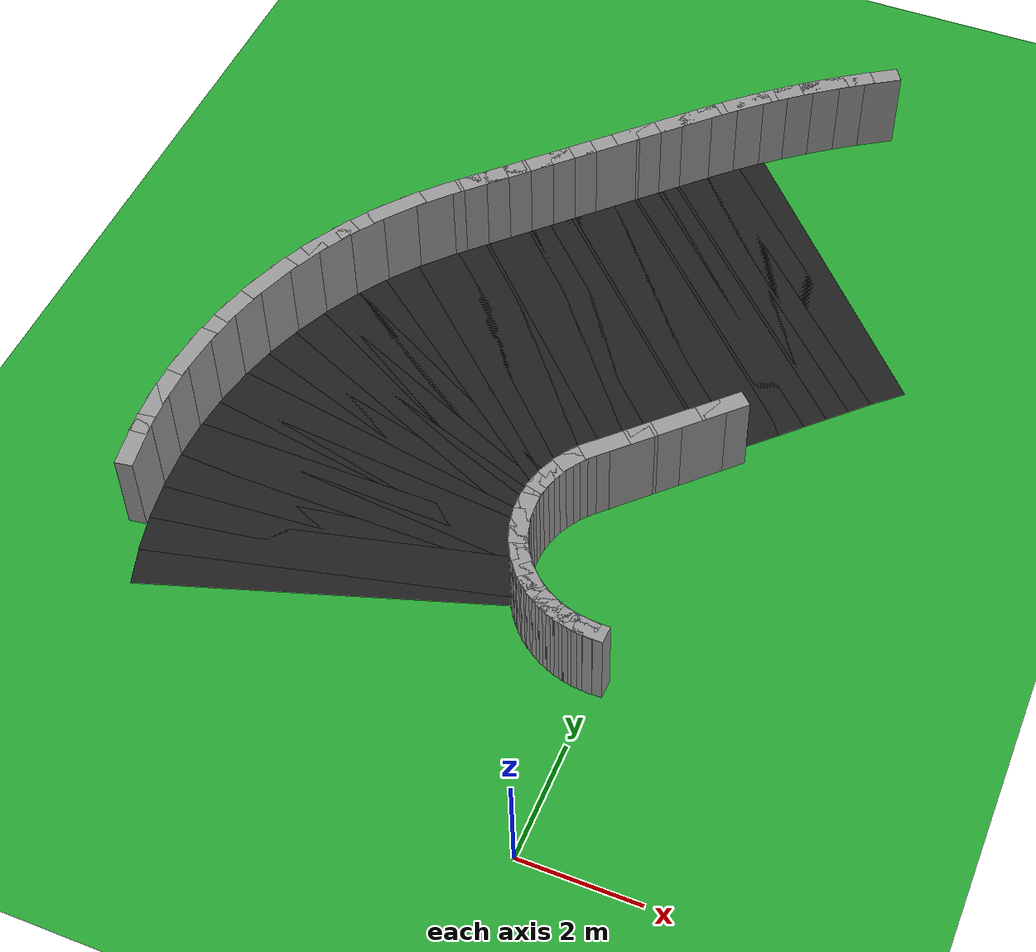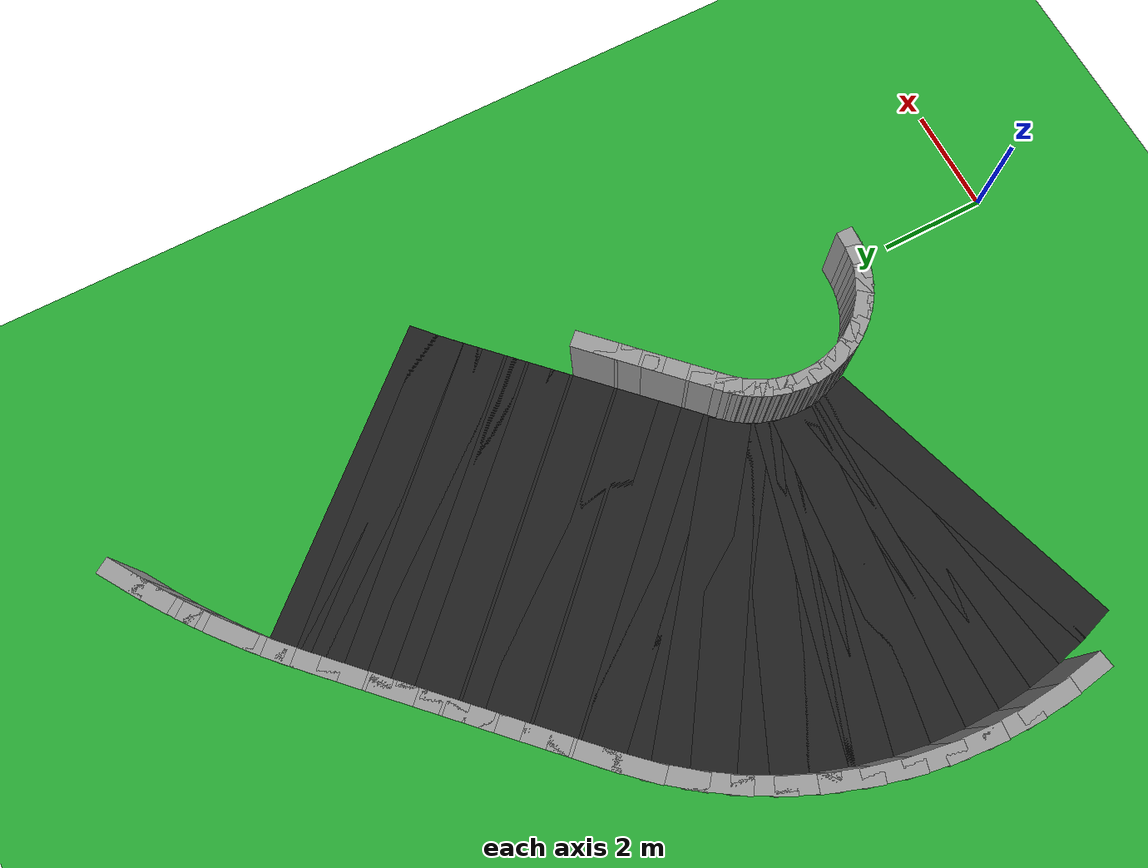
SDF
<sdf version="1.6">
 <world name="loop_road">
  <include><uri>model://sun</uri></include>
  <model name="ground_plane">
   <static>true</static>
   <link name="link">
    <collision name="collision">
     <surface><friction><ode><mu>100</mu><mu2>50</mu2></ode></friction></surface>
     <geometry><plane><normal>0 0 1</normal><size>120 120</size></plane></geometry>
    </collision>
    <visual name="visual">
     <geometry><plane><normal>0 0 1</normal><size>120 120</size></plane></geometry>
     <material>
      <script><uri>file://media/materials/scripts/gazebo.material</uri><name>Gazebo/Green</name></script>
     </material>
    </visual>
   </link>
  </model>
  <model name="curbR_172">
   <static>true</static>
   <pose>0.276 16.319 0.750 0 0 -2.56891</pose>
   <link name="link">
    <collision name="collision"><geometry><box><size>0.856 0.300 1.500</size></box></geometry></collision>
    <visual name="visual">
     <geometry><box><size>0.856 0.300 1.500</size></box></geometry>
     <material>
      <script><uri>file://media/materials/scripts/gazebo.material</uri><name>Gazebo/Grey</name></script>
     </material>
    </visual>
   </link>
  </model>
  <model name="curbR_173">
   <static>true</static>
   <pose>-0.136 16.044 0.750 0 0 -2.53618</pose>
   <link name="link">
    <collision name="collision"><geometry><box><size>0.856 0.300 1.500</size></box></geometry></collision>
    <visual name="visual">
     <geometry><box><size>0.856 0.300 1.500</size></box></geometry>
     <material>
      <script><uri>file://media/materials/scripts/gazebo.material</uri><name>Gazebo/Grey</name></script>
     </material>
    </visual>
   </link>
  </model>
  <model name="curbR_174">
   <static>true</static>
   <pose>-0.539 15.755 0.750 0 0 -2.50346</pose>
   <link name="link">
    <collision name="collision"><geometry><box><size>0.856 0.300 1.500</size></box></geometry></collision>
    <visual name="visual">
     <geometry><box><size>0.856 0.300 1.500</size></box></geometry>
     <material>
      <script><uri>file://media/materials/scripts/gazebo.material</uri><name>Gazebo/Grey</name></script>
     </material>
    </visual>
   </link>
  </model>
  <model name="curbR_175">
   <static>true</static>
   <pose>-0.933 15.453 0.750 0 0 -2.47073</pose>
   <link name="link">
    <collision name="collision"><geometry><box><size>0.856 0.300 1.500</size></box></geometry></collision>
    <visual name="visual">
     <geometry><box><size>0.856 0.300 1.500</size></box></geometry>
     <material>
      <script><uri>file://media/materials/scripts/gazebo.material</uri><name>Gazebo/Grey</name></script>
     </material>
    </visual>
   </link>
  </model>
  <model name="curbR_176">
   <static>true</static>
   <pose>-1.316 15.139 0.750 0 0 -2.43801</pose>
   <link name="link">
    <collision name="collision"><geometry><box><size>0.856 0.300 1.500</size></box></geometry></collision>
    <visual name="visual">
     <geometry><box><size>0.856 0.300 1.500</size></box></geometry>
     <material>
      <script><uri>file://media/materials/scripts/gazebo.material</uri><name>Gazebo/Grey</name></script>
     </material>
    </visual>
   </link>
  </model>
  <model name="asphalt_177">
   <static>true</static>
   <pose>0.427 12.478 0.005 0 0 -2.40528</pose>
   <link name="link">
    <visual name="visual">
     <geometry><box><size>0.753 6.000 0.010</size></box></geometry>
     <material>
      <script><uri>file://media/materials/scripts/gazebo.material</uri><name>Gazebo/Black</name></script>
     </material>
    </visual>
   </link>
  </model>
  <model name="curbR_177">
   <static>true</static>
   <pose>-1.688 14.812 0.750 0 0 -2.40528</pose>
   <link name="link">
    <collision name="collision"><geometry><box><size>0.856 0.300 1.500</size></box></geometry></collision>
    <visual name="visual">
     <geometry><box><size>0.856 0.300 1.500</size></box></geometry>
     <material>
      <script><uri>file://media/materials/scripts/gazebo.material</uri><name>Gazebo/Grey</name></script>
     </material>
    </visual>
   </link>
  </model>
  <model name="asphalt_178">
   <static>true</static>
   <pose>0.140 12.210 0.005 0 0 -2.37256</pose>
   <link name="link">
    <visual name="visual">
     <geometry><box><size>0.753 6.000 0.010</size></box></geometry>
     <material>
      <script><uri>file://media/materials/scripts/gazebo.material</uri><name>Gazebo/Black</name></script>
     </material>
    </visual>
   </link>
  </model>
  <model name="curbR_178">
   <static>true</static>
   <pose>-2.050 14.473 0.750 0 0 -2.37256</pose>
   <link name="link">
    <collision name="collision"><geometry><box><size>0.856 0.300 1.500</size></box></geometry></collision>
    <visual name="visual">
     <geometry><box><size>0.856 0.300 1.500</size></box></geometry>
     <material>
      <script><uri>file://media/materials/scripts/gazebo.material</uri><name>Gazebo/Grey</name></script>
     </material>
    </visual>
   </link>
  </model>
  <model name="asphalt_179">
   <static>true</static>
   <pose>-0.148 11.926 0.005 0 0 -2.35619</pose>
   <link name="link">
    <visual name="visual">
     <geometry><box><size>0.777 6.000 0.010</size></box></geometry>
     <material>
      <script><uri>file://media/materials/scripts/gazebo.material</uri><name>Gazebo/Black</name></script>
     </material>
    </visual>
   </link>
  </model>
  <model name="curbR_179">
   <static>true</static>
   <pose>-2.376 14.153 0.750 0 0 -2.35619</pose>
   <link name="link">
    <collision name="collision"><geometry><box><size>0.777 0.300 1.500</size></box></geometry></collision>
    <visual name="visual">
     <geometry><box><size>0.777 0.300 1.500</size></box></geometry>
     <material>
      <script><uri>file://media/materials/scripts/gazebo.material</uri><name>Gazebo/Grey</name></script>
     </material>
    </visual>
   </link>
  </model>
  <model name="asphalt_180">
   <static>true</static>
   <pose>-0.443 11.631 0.005 0 0 -2.35619</pose>
   <link name="link">
    <visual name="visual">
     <geometry><box><size>0.777 6.000 0.010</size></box></geometry>
     <material>
      <script><uri>file://media/materials/scripts/gazebo.material</uri><name>Gazebo/Black</name></script>
     </material>
    </visual>
   </link>
  </model>
  <model name="curbR_180">
   <static>true</static>
   <pose>-2.670 13.859 0.750 0 0 -2.35619</pose>
   <link name="link">
    <collision name="collision"><geometry><box><size>0.777 0.300 1.500</size></box></geometry></collision>
    <visual name="visual">
     <geometry><box><size>0.777 0.300 1.500</size></box></geometry>
     <material>
      <script><uri>file://media/materials/scripts/gazebo.material</uri><name>Gazebo/Grey</name></script>
     </material>
    </visual>
   </link>
  </model>
  <model name="asphalt_181">
   <static>true</static>
   <pose>-0.738 11.337 0.005 0 0 -2.35619</pose>
   <link name="link">
    <visual name="visual">
     <geometry><box><size>0.777 6.000 0.010</size></box></geometry>
     <material>
      <script><uri>file://media/materials/scripts/gazebo.material</uri><name>Gazebo/Black</name></script>
     </material>
    </visual>
   </link>
  </model>
  <model name="curbR_181">
   <static>true</static>
   <pose>-2.965 13.564 0.750 0 0 -2.35619</pose>
   <link name="link">
    <collision name="collision"><geometry><box><size>0.777 0.300 1.500</size></box></geometry></collision>
    <visual name="visual">
     <geometry><box><size>0.777 0.300 1.500</size></box></geometry>
     <material>
      <script><uri>file://media/materials/scripts/gazebo.material</uri><name>Gazebo/Grey</name></script>
     </material>
    </visual>
   </link>
  </model>
  <model name="asphalt_182">
   <static>true</static>
   <pose>-1.032 11.042 0.005 0 0 -2.35619</pose>
   <link name="link">
    <visual name="visual">
     <geometry><box><size>0.777 6.000 0.010</size></box></geometry>
     <material>
      <script><uri>file://media/materials/scripts/gazebo.material</uri><name>Gazebo/Black</name></script>
     </material>
    </visual>
   </link>
  </model>
  <model name="curbR_182">
   <static>true</static>
   <pose>-3.260 13.270 0.750 0 0 -2.35619</pose>
   <link name="link">
    <collision name="collision"><geometry><box><size>0.777 0.300 1.500</size></box></geometry></collision>
    <visual name="visual">
     <geometry><box><size>0.777 0.300 1.500</size></box></geometry>
     <material>
      <script><uri>file://media/materials/scripts/gazebo.material</uri><name>Gazebo/Grey</name></script>
     </material>
    </visual>
   </link>
  </model>
  <model name="asphalt_183">
   <static>true</static>
   <pose>-1.327 10.748 0.005 0 0 -2.35619</pose>
   <link name="link">
    <visual name="visual">
     <geometry><box><size>0.777 6.000 0.010</size></box></geometry>
     <material>
      <script><uri>file://media/materials/scripts/gazebo.material</uri><name>Gazebo/Black</name></script>
     </material>
    </visual>
   </link>
  </model>
  <model name="curbR_183">
   <static>true</static>
   <pose>-3.554 12.975 0.750 0 0 -2.35619</pose>
   <link name="link">
    <collision name="collision"><geometry><box><size>0.777 0.300 1.500</size></box></geometry></collision>
    <visual name="visual">
     <geometry><box><size>0.777 0.300 1.500</size></box></geometry>
     <material>
      <script><uri>file://media/materials/scripts/gazebo.material</uri><name>Gazebo/Grey</name></script>
     </material>
    </visual>
   </link>
  </model>
  <model name="asphalt_184">
   <static>true</static>
   <pose>-1.621 10.453 0.005 0 0 -2.35619</pose>
   <link name="link">
    <visual name="visual">
     <geometry><box><size>0.777 6.000 0.010</size></box></geometry>
     <material>
      <script><uri>file://media/materials/scripts/gazebo.material</uri><name>Gazebo/Black</name></script>
     </material>
    </visual>
   </link>
  </model>
  <model name="curbR_184">
   <static>true</static>
   <pose>-3.849 12.680 0.750 0 0 -2.35619</pose>
   <link name="link">
    <collision name="collision"><geometry><box><size>0.777 0.300 1.500</size></box></geometry></collision>
    <visual name="visual">
     <geometry><box><size>0.777 0.300 1.500</size></box></geometry>
     <material>
      <script><uri>file://media/materials/scripts/gazebo.material</uri><name>Gazebo/Grey</name></script>
     </material>
    </visual>
   </link>
  </model>
  <model name="asphalt_185">
   <static>true</static>
   <pose>-1.916 10.158 0.005 0 0 -2.35619</pose>
   <link name="link">
    <visual name="visual">
     <geometry><box><size>0.777 6.000 0.010</size></box></geometry>
     <material>
      <script><uri>file://media/materials/scripts/gazebo.material</uri><name>Gazebo/Black</name></script>
     </material>
    </visual>
   </link>
  </model>
  <model name="curbL_185">
   <static>true</static>
   <pose>0.311 7.931 0.750 0 0 -2.35619</pose>
   <link name="link">
    <collision name="collision"><geometry><box><size>0.777 0.300 1.500</size></box></geometry></collision>
    <visual name="visual">
     <geometry><box><size>0.777 0.300 1.500</size></box></geometry>
     <material>
      <script><uri>file://media/materials/scripts/gazebo.material</uri><name>Gazebo/Grey</name></script>
     </material>
    </visual>
   </link>
  </model>
  <model name="curbR_185">
   <static>true</static>
   <pose>-4.143 12.386 0.750 0 0 -2.35619</pose>
   <link name="link">
    <collision name="collision"><geometry><box><size>0.777 0.300 1.500</size></box></geometry></collision>
    <visual name="visual">
     <geometry><box><size>0.777 0.300 1.500</size></box></geometry>
     <material>
      <script><uri>file://media/materials/scripts/gazebo.material</uri><name>Gazebo/Grey</name></script>
     </material>
    </visual>
   </link>
  </model>
  <model name="asphalt_186">
   <static>true</static>
   <pose>-2.211 9.864 0.005 0 0 -2.35619</pose>
   <link name="link">
    <visual name="visual">
     <geometry><box><size>0.777 6.000 0.010</size></box></geometry>
     <material>
      <script><uri>file://media/materials/scripts/gazebo.material</uri><name>Gazebo/Black</name></script>
     </material>
    </visual>
   </link>
  </model>
  <model name="curbL_186">
   <static>true</static>
   <pose>0.017 7.636 0.750 0 0 -2.35619</pose>
   <link name="link">
    <collision name="collision"><geometry><box><size>0.777 0.300 1.500</size></box></geometry></collision>
    <visual name="visual">
     <geometry><box><size>0.777 0.300 1.500</size></box></geometry>
     <material>
      <script><uri>file://media/materials/scripts/gazebo.material</uri><name>Gazebo/Grey</name></script>
     </material>
    </visual>
   </link>
  </model>
  <model name="curbR_186">
   <static>true</static>
   <pose>-4.438 12.091 0.750 0 0 -2.35619</pose>
   <link name="link">
    <collision name="collision"><geometry><box><size>0.777 0.300 1.500</size></box></geometry></collision>
    <visual name="visual">
     <geometry><box><size>0.777 0.300 1.500</size></box></geometry>
     <material>
      <script><uri>file://media/materials/scripts/gazebo.material</uri><name>Gazebo/Grey</name></script>
     </material>
    </visual>
   </link>
  </model>
  <model name="asphalt_187">
   <static>true</static>
   <pose>-2.505 9.569 0.005 0 0 -2.35619</pose>
   <link name="link">
    <visual name="visual">
     <geometry><box><size>0.777 6.000 0.010</size></box></geometry>
     <material>
      <script><uri>file://media/materials/scripts/gazebo.material</uri><name>Gazebo/Black</name></script>
     </material>
    </visual>
   </link>
  </model>
  <model name="curbL_187">
   <static>true</static>
   <pose>-0.278 7.342 0.750 0 0 -2.35619</pose>
   <link name="link">
    <collision name="collision"><geometry><box><size>0.777 0.300 1.500</size></box></geometry></collision>
    <visual name="visual">
     <geometry><box><size>0.777 0.300 1.500</size></box></geometry>
     <material>
      <script><uri>file://media/materials/scripts/gazebo.material</uri><name>Gazebo/Grey</name></script>
     </material>
    </visual>
   </link>
  </model>
  <model name="curbR_187">
   <static>true</static>
   <pose>-4.733 11.796 0.750 0 0 -2.35619</pose>
   <link name="link">
    <collision name="collision"><geometry><box><size>0.777 0.300 1.500</size></box></geometry></collision>
    <visual name="visual">
     <geometry><box><size>0.777 0.300 1.500</size></box></geometry>
     <material>
      <script><uri>file://media/materials/scripts/gazebo.material</uri><name>Gazebo/Grey</name></script>
     </material>
    </visual>
   </link>
  </model>
  <model name="asphalt_188">
   <static>true</static>
   <pose>-2.800 9.274 0.005 0 0 -2.35619</pose>
   <link name="link">
    <visual name="visual">
     <geometry><box><size>0.777 6.000 0.010</size></box></geometry>
     <material>
      <script><uri>file://media/materials/scripts/gazebo.material</uri><name>Gazebo/Black</name></script>
     </material>
    </visual>
   </link>
  </model>
  <model name="curbL_188">
   <static>true</static>
   <pose>-0.573 7.047 0.750 0 0 -2.35619</pose>
   <link name="link">
    <collision name="collision"><geometry><box><size>0.777 0.300 1.500</size></box></geometry></collision>
    <visual name="visual">
     <geometry><box><size>0.777 0.300 1.500</size></box></geometry>
     <material>
      <script><uri>file://media/materials/scripts/gazebo.material</uri><name>Gazebo/Grey</name></script>
     </material>
    </visual>
   </link>
  </model>
  <model name="curbR_188">
   <static>true</static>
   <pose>-5.027 11.502 0.750 0 0 -2.35619</pose>
   <link name="link">
    <collision name="collision"><geometry><box><size>0.777 0.300 1.500</size></box></geometry></collision>
    <visual name="visual">
     <geometry><box><size>0.777 0.300 1.500</size></box></geometry>
     <material>
      <script><uri>file://media/materials/scripts/gazebo.material</uri><name>Gazebo/Grey</name></script>
     </material>
    </visual>
   </link>
  </model>
  <model name="asphalt_189">
   <static>true</static>
   <pose>-3.095 8.980 0.005 0 0 -2.35619</pose>
   <link name="link">
    <visual name="visual">
     <geometry><box><size>0.777 6.000 0.010</size></box></geometry>
     <material>
      <script><uri>file://media/materials/scripts/gazebo.material</uri><name>Gazebo/Black</name></script>
     </material>
    </visual>
   </link>
  </model>
  <model name="curbL_189">
   <static>true</static>
   <pose>-0.867 6.752 0.750 0 0 -2.35619</pose>
   <link name="link">
    <collision name="collision"><geometry><box><size>0.777 0.300 1.500</size></box></geometry></collision>
    <visual name="visual">
     <geometry><box><size>0.777 0.300 1.500</size></box></geometry>
     <material>
      <script><uri>file://media/materials/scripts/gazebo.material</uri><name>Gazebo/Grey</name></script>
     </material>
    </visual>
   </link>
  </model>
  <model name="curbR_189">
   <static>true</static>
   <pose>-5.322 11.207 0.750 0 0 -2.35619</pose>
   <link name="link">
    <collision name="collision"><geometry><box><size>0.777 0.300 1.500</size></box></geometry></collision>
    <visual name="visual">
     <geometry><box><size>0.777 0.300 1.500</size></box></geometry>
     <material>
      <script><uri>file://media/materials/scripts/gazebo.material</uri><name>Gazebo/Grey</name></script>
     </material>
    </visual>
   </link>
  </model>
  <model name="asphalt_190">
   <static>true</static>
   <pose>-3.389 8.685 0.005 0 0 -2.35619</pose>
   <link name="link">
    <visual name="visual">
     <geometry><box><size>0.777 6.000 0.010</size></box></geometry>
     <material>
      <script><uri>file://media/materials/scripts/gazebo.material</uri><name>Gazebo/Black</name></script>
     </material>
    </visual>
   </link>
  </model>
  <model name="curbL_190">
   <static>true</static>
   <pose>-1.162 6.458 0.750 0 0 -2.35619</pose>
   <link name="link">
    <collision name="collision"><geometry><box><size>0.777 0.300 1.500</size></box></geometry></collision>
    <visual name="visual">
     <geometry><box><size>0.777 0.300 1.500</size></box></geometry>
     <material>
      <script><uri>file://media/materials/scripts/gazebo.material</uri><name>Gazebo/Grey</name></script>
     </material>
    </visual>
   </link>
  </model>
  <model name="curbR_190">
   <static>true</static>
   <pose>-5.617 10.913 0.750 0 0 -2.35619</pose>
   <link name="link">
    <collision name="collision"><geometry><box><size>0.777 0.300 1.500</size></box></geometry></collision>
    <visual name="visual">
     <geometry><box><size>0.777 0.300 1.500</size></box></geometry>
     <material>
      <script><uri>file://media/materials/scripts/gazebo.material</uri><name>Gazebo/Grey</name></script>
     </material>
    </visual>
   </link>
  </model>
  <model name="asphalt_191">
   <static>true</static>
   <pose>-3.674 8.389 0.005 0 0 -2.31557</pose>
   <link name="link">
    <visual name="visual">
     <geometry><box><size>0.766 6.000 0.010</size></box></geometry>
     <material>
      <script><uri>file://media/materials/scripts/gazebo.material</uri><name>Gazebo/Black</name></script>
     </material>
    </visual>
   </link>
  </model>
  <model name="curbL_191">
   <static>true</static>
   <pose>-1.360 6.255 0.750 0 0 -2.31557</pose>
   <link name="link">
    <collision name="collision"><geometry><box><size>0.510 0.300 1.500</size></box></geometry></collision>
    <visual name="visual">
     <geometry><box><size>0.510 0.300 1.500</size></box></geometry>
     <material>
      <script><uri>file://media/materials/scripts/gazebo.material</uri><name>Gazebo/Grey</name></script>
     </material>
    </visual>
   </link>
  </model>
  <model name="curbR_191">
   <static>true</static>
   <pose>-5.988 10.522 0.750 0 0 -2.31557</pose>
   <link name="link">
    <collision name="collision"><geometry><box><size>1.022 0.300 1.500</size></box></geometry></collision>
    <visual name="visual">
     <geometry><box><size>1.022 0.300 1.500</size></box></geometry>
     <material>
      <script><uri>file://media/materials/scripts/gazebo.material</uri><name>Gazebo/Grey</name></script>
     </material>
    </visual>
   </link>
  </model>
  <model name="asphalt_192">
   <static>true</static>
   <pose>-3.937 8.079 0.005 0 0 -2.23432</pose>
   <link name="link">
    <visual name="visual">
     <geometry><box><size>0.766 6.000 0.010</size></box></geometry>
     <material>
      <script><uri>file://media/materials/scripts/gazebo.material</uri><name>Gazebo/Black</name></script>
     </material>
    </visual>
   </link>
  </model>
  <model name="curbL_192">
   <static>true</static>
   <pose>-1.457 6.141 0.750 0 0 -2.23432</pose>
   <link name="link">
    <collision name="collision"><geometry><box><size>0.510 0.300 1.500</size></box></geometry></collision>
    <visual name="visual">
     <geometry><box><size>0.510 0.300 1.500</size></box></geometry>
     <material>
      <script><uri>file://media/materials/scripts/gazebo.material</uri><name>Gazebo/Grey</name></script>
     </material>
    </visual>
   </link>
  </model>
  <model name="curbR_192">
   <static>true</static>
   <pose>-6.417 10.018 0.750 0 0 -2.23432</pose>
   <link name="link">
    <collision name="collision"><geometry><box><size>1.022 0.300 1.500</size></box></geometry></collision>
    <visual name="visual">
     <geometry><box><size>1.022 0.300 1.500</size></box></geometry>
     <material>
      <script><uri>file://media/materials/scripts/gazebo.material</uri><name>Gazebo/Grey</name></script>
     </material>
    </visual>
   </link>
  </model>
  <model name="asphalt_193">
   <static>true</static>
   <pose>-4.174 7.750 0.005 0 0 -2.15307</pose>
   <link name="link">
    <visual name="visual">
     <geometry><box><size>0.766 6.000 0.010</size></box></geometry>
     <material>
      <script><uri>file://media/materials/scripts/gazebo.material</uri><name>Gazebo/Black</name></script>
     </material>
    </visual>
   </link>
  </model>
  <model name="curbL_193">
   <static>true</static>
   <pose>-1.545 6.019 0.750 0 0 -2.15307</pose>
   <link name="link">
    <collision name="collision"><geometry><box><size>0.510 0.300 1.500</size></box></geometry></collision>
    <visual name="visual">
     <geometry><box><size>0.510 0.300 1.500</size></box></geometry>
     <material>
      <script><uri>file://media/materials/scripts/gazebo.material</uri><name>Gazebo/Grey</name></script>
     </material>
    </visual>
   </link>
  </model>
  <model name="curbR_193">
   <static>true</static>
   <pose>-6.803 9.480 0.750 0 0 -2.15307</pose>
   <link name="link">
    <collision name="collision"><geometry><box><size>1.022 0.300 1.500</size></box></geometry></collision>
    <visual name="visual">
     <geometry><box><size>1.022 0.300 1.500</size></box></geometry>
     <material>
      <script><uri>file://media/materials/scripts/gazebo.material</uri><name>Gazebo/Grey</name></script>
     </material>
    </visual>
   </link>
  </model>
  <model name="asphalt_194">
   <static>true</static>
   <pose>-4.383 7.402 0.005 0 0 -2.07183</pose>
   <link name="link">
    <visual name="visual">
     <geometry><box><size>0.766 6.000 0.010</size></box></geometry>
     <material>
      <script><uri>file://media/materials/scripts/gazebo.material</uri><name>Gazebo/Black</name></script>
     </material>
    </visual>
   </link>
  </model>
  <model name="curbL_194">
   <static>true</static>
   <pose>-1.622 5.890 0.750 0 0 -2.07183</pose>
   <link name="link">
    <collision name="collision"><geometry><box><size>0.510 0.300 1.500</size></box></geometry></collision>
    <visual name="visual">
     <geometry><box><size>0.510 0.300 1.500</size></box></geometry>
     <material>
      <script><uri>file://media/materials/scripts/gazebo.material</uri><name>Gazebo/Grey</name></script>
     </material>
    </visual>
   </link>
  </model>
  <model name="curbR_194">
   <static>true</static>
   <pose>-7.144 8.913 0.750 0 0 -2.07183</pose>
   <link name="link">
    <collision name="collision"><geometry><box><size>1.022 0.300 1.500</size></box></geometry></collision>
    <visual name="visual">
     <geometry><box><size>1.022 0.300 1.500</size></box></geometry>
     <material>
      <script><uri>file://media/materials/scripts/gazebo.material</uri><name>Gazebo/Grey</name></script>
     </material>
    </visual>
   </link>
  </model>
  <model name="asphalt_195">
   <static>true</static>
   <pose>-4.563 7.038 0.005 0 0 -1.99058</pose>
   <link name="link">
    <visual name="visual">
     <geometry><box><size>0.766 6.000 0.010</size></box></geometry>
     <material>
      <script><uri>file://media/materials/scripts/gazebo.material</uri><name>Gazebo/Black</name></script>
     </material>
    </visual>
   </link>
  </model>
  <model name="curbL_195">
   <static>true</static>
   <pose>-1.689 5.755 0.750 0 0 -1.99058</pose>
   <link name="link">
    <collision name="collision"><geometry><box><size>0.510 0.300 1.500</size></box></geometry></collision>
    <visual name="visual">
     <geometry><box><size>0.510 0.300 1.500</size></box></geometry>
     <material>
      <script><uri>file://media/materials/scripts/gazebo.material</uri><name>Gazebo/Grey</name></script>
     </material>
    </visual>
   </link>
  </model>
  <model name="curbR_195">
   <static>true</static>
   <pose>-7.438 8.321 0.750 0 0 -1.99058</pose>
   <link name="link">
    <collision name="collision"><geometry><box><size>1.022 0.300 1.500</size></box></geometry></collision>
    <visual name="visual">
     <geometry><box><size>1.022 0.300 1.500</size></box></geometry>
     <material>
      <script><uri>file://media/materials/scripts/gazebo.material</uri><name>Gazebo/Grey</name></script>
     </material>
    </visual>
   </link>
  </model>
  <model name="asphalt_196">
   <static>true</static>
   <pose>-4.714 6.661 0.005 0 0 -1.90933</pose>
   <link name="link">
    <visual name="visual">
     <geometry><box><size>0.766 6.000 0.010</size></box></geometry>
     <material>
      <script><uri>file://media/materials/scripts/gazebo.material</uri><name>Gazebo/Black</name></script>
     </material>
    </visual>
   </link>
  </model>
  <model name="curbL_196">
   <static>true</static>
   <pose>-1.745 5.616 0.750 0 0 -1.90933</pose>
   <link name="link">
    <collision name="collision"><geometry><box><size>0.510 0.300 1.500</size></box></geometry></collision>
    <visual name="visual">
     <geometry><box><size>0.510 0.300 1.500</size></box></geometry>
     <material>
      <script><uri>file://media/materials/scripts/gazebo.material</uri><name>Gazebo/Grey</name></script>
     </material>
    </visual>
   </link>
  </model>
  <model name="curbR_196">
   <static>true</static>
   <pose>-7.682 7.706 0.750 0 0 -1.90933</pose>
   <link name="link">
    <collision name="collision"><geometry><box><size>1.022 0.300 1.500</size></box></geometry></collision>
    <visual name="visual">
     <geometry><box><size>1.022 0.300 1.500</size></box></geometry>
     <material>
      <script><uri>file://media/materials/scripts/gazebo.material</uri><name>Gazebo/Grey</name></script>
     </material>
    </visual>
   </link>
  </model>
  <model name="asphalt_197">
   <static>true</static>
   <pose>-4.833 6.273 0.005 0 0 -1.82808</pose>
   <link name="link">
    <visual name="visual">
     <geometry><box><size>0.766 6.000 0.010</size></box></geometry>
     <material>
      <script><uri>file://media/materials/scripts/gazebo.material</uri><name>Gazebo/Black</name></script>
     </material>
    </visual>
   </link>
  </model>
  <model name="curbL_197">
   <static>true</static>
   <pose>-1.789 5.472 0.750 0 0 -1.82808</pose>
   <link name="link">
    <collision name="collision"><geometry><box><size>0.510 0.300 1.500</size></box></geometry></collision>
    <visual name="visual">
     <geometry><box><size>0.510 0.300 1.500</size></box></geometry>
     <material>
      <script><uri>file://media/materials/scripts/gazebo.material</uri><name>Gazebo/Grey</name></script>
     </material>
    </visual>
   </link>
  </model>
  <model name="curbR_197">
   <static>true</static>
   <pose>-7.877 7.074 0.750 0 0 -1.82808</pose>
   <link name="link">
    <collision name="collision"><geometry><box><size>1.022 0.300 1.500</size></box></geometry></collision>
    <visual name="visual">
     <geometry><box><size>1.022 0.300 1.500</size></box></geometry>
     <material>
      <script><uri>file://media/materials/scripts/gazebo.material</uri><name>Gazebo/Grey</name></script>
     </material>
    </visual>
   </link>
  </model>
  <model name="asphalt_198">
   <static>true</static>
   <pose>-4.920 5.877 0.005 0 0 -1.74683</pose>
   <link name="link">
    <visual name="visual">
     <geometry><box><size>0.766 6.000 0.010</size></box></geometry>
     <material>
      <script><uri>file://media/materials/scripts/gazebo.material</uri><name>Gazebo/Black</name></script>
     </material>
    </visual>
   </link>
  </model>
  <model name="curbL_198">
   <static>true</static>
   <pose>-1.821 5.325 0.750 0 0 -1.74683</pose>
   <link name="link">
    <collision name="collision"><geometry><box><size>0.510 0.300 1.500</size></box></geometry></collision>
    <visual name="visual">
     <geometry><box><size>0.510 0.300 1.500</size></box></geometry>
     <material>
      <script><uri>file://media/materials/scripts/gazebo.material</uri><name>Gazebo/Grey</name></script>
     </material>
    </visual>
   </link>
  </model>
  <model name="curbR_198">
   <static>true</static>
   <pose>-8.019 6.428 0.750 0 0 -1.74683</pose>
   <link name="link">
    <collision name="collision"><geometry><box><size>1.022 0.300 1.500</size></box></geometry></collision>
    <visual name="visual">
     <geometry><box><size>1.022 0.300 1.500</size></box></geometry>
     <material>
      <script><uri>file://media/materials/scripts/gazebo.material</uri><name>Gazebo/Grey</name></script>
     </material>
    </visual>
   </link>
  </model>
  <model name="asphalt_199">
   <static>true</static>
   <pose>-4.975 5.474 0.005 0 0 -1.66559</pose>
   <link name="link">
    <visual name="visual">
     <geometry><box><size>0.766 6.000 0.010</size></box></geometry>
     <material>
      <script><uri>file://media/materials/scripts/gazebo.material</uri><name>Gazebo/Black</name></script>
     </material>
    </visual>
   </link>
  </model>
  <model name="curbL_199">
   <static>true</static>
   <pose>-1.842 5.176 0.750 0 0 -1.66559</pose>
   <link name="link">
    <collision name="collision"><geometry><box><size>0.510 0.300 1.500</size></box></geometry></collision>
    <visual name="visual">
     <geometry><box><size>0.510 0.300 1.500</size></box></geometry>
     <material>
      <script><uri>file://media/materials/scripts/gazebo.material</uri><name>Gazebo/Grey</name></script>
     </material>
    </visual>
   </link>
  </model>
  <model name="curbR_199">
   <static>true</static>
   <pose>-8.108 5.772 0.750 0 0 -1.66559</pose>
   <link name="link">
    <collision name="collision"><geometry><box><size>1.022 0.300 1.500</size></box></geometry></collision>
    <visual name="visual">
     <geometry><box><size>1.022 0.300 1.500</size></box></geometry>
     <material>
      <script><uri>file://media/materials/scripts/gazebo.material</uri><name>Gazebo/Grey</name></script>
     </material>
    </visual>
   </link>
  </model>
  <model name="asphalt_200">
   <static>true</static>
   <pose>-4.997 5.069 0.005 0 0 -1.58434</pose>
   <link name="link">
    <visual name="visual">
     <geometry><box><size>0.766 6.000 0.010</size></box></geometry>
     <material>
      <script><uri>file://media/materials/scripts/gazebo.material</uri><name>Gazebo/Black</name></script>
     </material>
    </visual>
   </link>
  </model>
  <model name="curbL_200">
   <static>true</static>
   <pose>-1.850 5.026 0.750 0 0 -1.58434</pose>
   <link name="link">
    <collision name="collision"><geometry><box><size>0.510 0.300 1.500</size></box></geometry></collision>
    <visual name="visual">
     <geometry><box><size>0.510 0.300 1.500</size></box></geometry>
     <material>
      <script><uri>file://media/materials/scripts/gazebo.material</uri><name>Gazebo/Grey</name></script>
     </material>
    </visual>
   </link>
  </model>
  <model name="curbR_200">
   <static>true</static>
   <pose>-8.144 5.112 0.750 0 0 -1.58434</pose>
   <link name="link">
    <collision name="collision"><geometry><box><size>1.022 0.300 1.500</size></box></geometry></collision>
    <visual name="visual">
     <geometry><box><size>1.022 0.300 1.500</size></box></geometry>
     <material>
      <script><uri>file://media/materials/scripts/gazebo.material</uri><name>Gazebo/Grey</name></script>
     </material>
    </visual>
   </link>
  </model>
  <model name="asphalt_201">
   <static>true</static>
   <pose>-4.986 4.663 0.005 0 0 -1.50309</pose>
   <link name="link">
    <visual name="visual">
     <geometry><box><size>0.766 6.000 0.010</size></box></geometry>
     <material>
      <script><uri>file://media/materials/scripts/gazebo.material</uri><name>Gazebo/Black</name></script>
     </material>
    </visual>
   </link>
  </model>
  <model name="curbL_201">
   <static>true</static>
   <pose>-1.846 4.876 0.750 0 0 -1.50309</pose>
   <link name="link">
    <collision name="collision"><geometry><box><size>0.510 0.300 1.500</size></box></geometry></collision>
    <visual name="visual">
     <geometry><box><size>0.510 0.300 1.500</size></box></geometry>
     <material>
      <script><uri>file://media/materials/scripts/gazebo.material</uri><name>Gazebo/Grey</name></script>
     </material>
    </visual>
   </link>
  </model>
  <model name="curbR_201">
   <static>true</static>
   <pose>-8.126 4.450 0.750 0 0 -1.50309</pose>
   <link name="link">
    <collision name="collision"><geometry><box><size>1.022 0.300 1.500</size></box></geometry></collision>
    <visual name="visual">
     <geometry><box><size>1.022 0.300 1.500</size></box></geometry>
     <material>
      <script><uri>file://media/materials/scripts/gazebo.material</uri><name>Gazebo/Grey</name></script>
     </material>
    </visual>
   </link>
  </model>
  <model name="asphalt_202">
   <static>true</static>
   <pose>-4.942 4.260 0.005 0 0 -1.42184</pose>
   <link name="link">
    <visual name="visual">
     <geometry><box><size>0.766 6.000 0.010</size></box></geometry>
     <material>
      <script><uri>file://media/materials/scripts/gazebo.material</uri><name>Gazebo/Black</name></script>
     </material>
    </visual>
   </link>
  </model>
  <model name="curbL_202">
   <static>true</static>
   <pose>-1.829 4.727 0.750 0 0 -1.42184</pose>
   <link name="link">
    <collision name="collision"><geometry><box><size>0.510 0.300 1.500</size></box></geometry></collision>
    <visual name="visual">
     <geometry><box><size>0.510 0.300 1.500</size></box></geometry>
     <material>
      <script><uri>file://media/materials/scripts/gazebo.material</uri><name>Gazebo/Grey</name></script>
     </material>
    </visual>
   </link>
  </model>
  <model name="curbR_202">
   <static>true</static>
   <pose>-8.054 3.793 0.750 0 0 -1.42184</pose>
   <link name="link">
    <collision name="collision"><geometry><box><size>1.022 0.300 1.500</size></box></geometry></collision>
    <visual name="visual">
     <geometry><box><size>1.022 0.300 1.500</size></box></geometry>
     <material>
      <script><uri>file://media/materials/scripts/gazebo.material</uri><name>Gazebo/Grey</name></script>
     </material>
    </visual>
   </link>
  </model>
  <model name="asphalt_203">
   <static>true</static>
   <pose>-4.865 3.861 0.005 0 0 -1.34059</pose>
   <link name="link">
    <visual name="visual">
     <geometry><box><size>0.766 6.000 0.010</size></box></geometry>
     <material>
      <script><uri>file://media/materials/scripts/gazebo.material</uri><name>Gazebo/Black</name></script>
     </material>
    </visual>
   </link>
  </model>
  <model name="curbL_203">
   <static>true</static>
   <pose>-1.801 4.579 0.750 0 0 -1.34059</pose>
   <link name="link">
    <collision name="collision"><geometry><box><size>0.510 0.300 1.500</size></box></geometry></collision>
    <visual name="visual">
     <geometry><box><size>0.510 0.300 1.500</size></box></geometry>
     <material>
      <script><uri>file://media/materials/scripts/gazebo.material</uri><name>Gazebo/Grey</name></script>
     </material>
    </visual>
   </link>
  </model>
  <model name="asphalt_204">
   <static>true</static>
   <pose>-4.757 3.470 0.005 0 0 -1.25935</pose>
   <link name="link">
    <visual name="visual">
     <geometry><box><size>0.766 6.000 0.010</size></box></geometry>
     <material>
      <script><uri>file://media/materials/scripts/gazebo.material</uri><name>Gazebo/Black</name></script>
     </material>
    </visual>
   </link>
  </model>
  <model name="curbL_204">
   <static>true</static>
   <pose>-1.761 4.435 0.750 0 0 -1.25935</pose>
   <link name="link">
    <collision name="collision"><geometry><box><size>0.510 0.300 1.500</size></box></geometry></collision>
    <visual name="visual">
     <geometry><box><size>0.510 0.300 1.500</size></box></geometry>
     <material>
      <script><uri>file://media/materials/scripts/gazebo.material</uri><name>Gazebo/Grey</name></script>
     </material>
    </visual>
   </link>
  </model>
  <model name="curbL_205">
   <static>true</static>
   <pose>-1.709 4.293 0.750 0 0 -1.17810</pose>
   <link name="link">
    <collision name="collision"><geometry><box><size>0.510 0.300 1.500</size></box></geometry></collision>
    <visual name="visual">
     <geometry><box><size>0.510 0.300 1.500</size></box></geometry>
     <material>
      <script><uri>file://media/materials/scripts/gazebo.material</uri><name>Gazebo/Grey</name></script>
     </material>
    </visual>
   </link>
  </model>
  <model name="curbL_206">
   <static>true</static>
   <pose>-1.646 4.157 0.750 0 0 -1.09685</pose>
   <link name="link">
    <collision name="collision"><geometry><box><size>0.510 0.300 1.500</size></box></geometry></collision>
    <visual name="visual">
     <geometry><box><size>0.510 0.300 1.500</size></box></geometry>
     <material>
      <script><uri>file://media/materials/scripts/gazebo.material</uri><name>Gazebo/Grey</name></script>
     </material>
    </visual>
   </link>
  </model>
  <model name="curbL_207">
   <static>true</static>
   <pose>-1.572 4.026 0.750 0 0 -1.01560</pose>
   <link name="link">
    <collision name="collision"><geometry><box><size>0.510 0.300 1.500</size></box></geometry></collision>
    <visual name="visual">
     <geometry><box><size>0.510 0.300 1.500</size></box></geometry>
     <material>
      <script><uri>file://media/materials/scripts/gazebo.material</uri><name>Gazebo/Grey</name></script>
     </material>
    </visual>
   </link>
  </model>
  <model name="curbL_208">
   <static>true</static>
   <pose>-1.488 3.902 0.750 0 0 -0.93435</pose>
   <link name="link">
    <collision name="collision"><geometry><box><size>0.510 0.300 1.500</size></box></geometry></collision>
    <visual name="visual">
     <geometry><box><size>0.510 0.300 1.500</size></box></geometry>
     <material>
      <script><uri>file://media/materials/scripts/gazebo.material</uri><name>Gazebo/Grey</name></script>
     </material>
    </visual>
   </link>
  </model>
  <model name="curbL_209">
   <static>true</static>
   <pose>-1.394 3.785 0.750 0 0 -0.85310</pose>
   <link name="link">
    <collision name="collision"><geometry><box><size>0.510 0.300 1.500</size></box></geometry></collision>
    <visual name="visual">
     <geometry><box><size>0.510 0.300 1.500</size></box></geometry>
     <material>
      <script><uri>file://media/materials/scripts/gazebo.material</uri><name>Gazebo/Grey</name></script>
     </material>
    </visual>
   </link>
  </model>
  <model name="curbL_210">
   <static>true</static>
   <pose>-1.290 3.676 0.750 0 0 -0.77186</pose>
   <link name="link">
    <collision name="collision"><geometry><box><size>0.510 0.300 1.500</size></box></geometry></collision>
    <visual name="visual">
     <geometry><box><size>0.510 0.300 1.500</size></box></geometry>
     <material>
      <script><uri>file://media/materials/scripts/gazebo.material</uri><name>Gazebo/Grey</name></script>
     </material>
    </visual>
   </link>
  </model>
  <model name="curbL_211">
   <static>true</static>
   <pose>-1.178 3.575 0.750 0 0 -0.69061</pose>
   <link name="link">
    <collision name="collision"><geometry><box><size>0.510 0.300 1.500</size></box></geometry></collision>
    <visual name="visual">
     <geometry><box><size>0.510 0.300 1.500</size></box></geometry>
     <material>
      <script><uri>file://media/materials/scripts/gazebo.material</uri><name>Gazebo/Grey</name></script>
     </material>
    </visual>
   </link>
  </model>
  <model name="curbL_212">
   <static>true</static>
   <pose>-1.059 3.484 0.750 0 0 -0.60936</pose>
   <link name="link">
    <collision name="collision"><geometry><box><size>0.510 0.300 1.500</size></box></geometry></collision>
    <visual name="visual">
     <geometry><box><size>0.510 0.300 1.500</size></box></geometry>
     <material>
      <script><uri>file://media/materials/scripts/gazebo.material</uri><name>Gazebo/Grey</name></script>
     </material>
    </visual>
   </link>
  </model>
  <model name="curbL_213">
   <static>true</static>
   <pose>-0.932 3.404 0.750 0 0 -0.52811</pose>
   <link name="link">
    <collision name="collision"><geometry><box><size>0.510 0.300 1.500</size></box></geometry></collision>
    <visual name="visual">
     <geometry><box><size>0.510 0.300 1.500</size></box></geometry>
     <material>
      <script><uri>file://media/materials/scripts/gazebo.material</uri><name>Gazebo/Grey</name></script>
     </material>
    </visual>
   </link>
  </model>
  <model name="curbL_214">
   <static>true</static>
   <pose>-0.799 3.333 0.750 0 0 -0.44686</pose>
   <link name="link">
    <collision name="collision"><geometry><box><size>0.510 0.300 1.500</size></box></geometry></collision>
    <visual name="visual">
     <geometry><box><size>0.510 0.300 1.500</size></box></geometry>
     <material>
      <script><uri>file://media/materials/scripts/gazebo.material</uri><name>Gazebo/Grey</name></script>
     </material>
    </visual>
   </link>
  </model>
  <model name="curbL_215">
   <static>true</static>
   <pose>-0.661 3.274 0.750 0 0 -0.36562</pose>
   <link name="link">
    <collision name="collision"><geometry><box><size>0.510 0.300 1.500</size></box></geometry></collision>
    <visual name="visual">
     <geometry><box><size>0.510 0.300 1.500</size></box></geometry>
     <material>
      <script><uri>file://media/materials/scripts/gazebo.material</uri><name>Gazebo/Grey</name></script>
     </material>
    </visual>
   </link>
  </model>
  <model name="curbL_216">
   <static>true</static>
   <pose>-0.519 3.226 0.750 0 0 -0.28437</pose>
   <link name="link">
    <collision name="collision"><geometry><box><size>0.510 0.300 1.500</size></box></geometry></collision>
    <visual name="visual">
     <geometry><box><size>0.510 0.300 1.500</size></box></geometry>
     <material>
      <script><uri>file://media/materials/scripts/gazebo.material</uri><name>Gazebo/Grey</name></script>
     </material>
    </visual>
   </link>
  </model>
  <model name="curbL_217">
   <static>true</static>
   <pose>-0.373 3.190 0.750 0 0 -0.20312</pose>
   <link name="link">
    <collision name="collision"><geometry><box><size>0.510 0.300 1.500</size></box></geometry></collision>
    <visual name="visual">
     <geometry><box><size>0.510 0.300 1.500</size></box></geometry>
     <material>
      <script><uri>file://media/materials/scripts/gazebo.material</uri><name>Gazebo/Grey</name></script>
     </material>
    </visual>
   </link>
  </model>
  <model name="curbL_218">
   <static>true</static>
   <pose>-0.225 3.165 0.750 0 0 -0.12187</pose>
   <link name="link">
    <collision name="collision"><geometry><box><size>0.510 0.300 1.500</size></box></geometry></collision>
    <visual name="visual">
     <geometry><box><size>0.510 0.300 1.500</size></box></geometry>
     <material>
      <script><uri>file://media/materials/scripts/gazebo.material</uri><name>Gazebo/Grey</name></script>
     </material>
    </visual>
   </link>
  </model>
  <model name="curbL_219">
   <static>true</static>
   <pose>-0.075 3.153 0.750 0 0 -0.04062</pose>
   <link name="link">
    <collision name="collision"><geometry><box><size>0.510 0.300 1.500</size></box></geometry></collision>
    <visual name="visual">
     <geometry><box><size>0.510 0.300 1.500</size></box></geometry>
     <material>
      <script><uri>file://media/materials/scripts/gazebo.material</uri><name>Gazebo/Grey</name></script>
     </material>
    </visual>
   </link>
  </model>
 </world>
</sdf>
